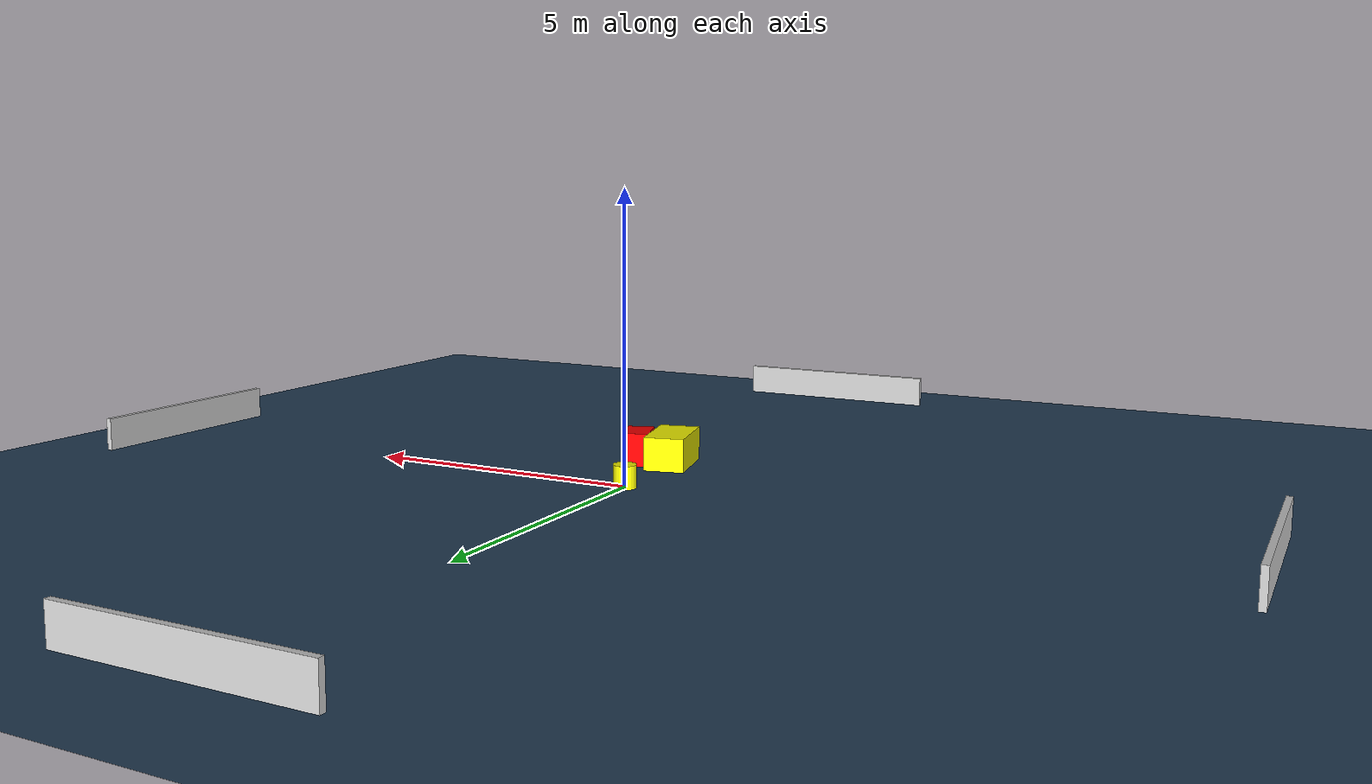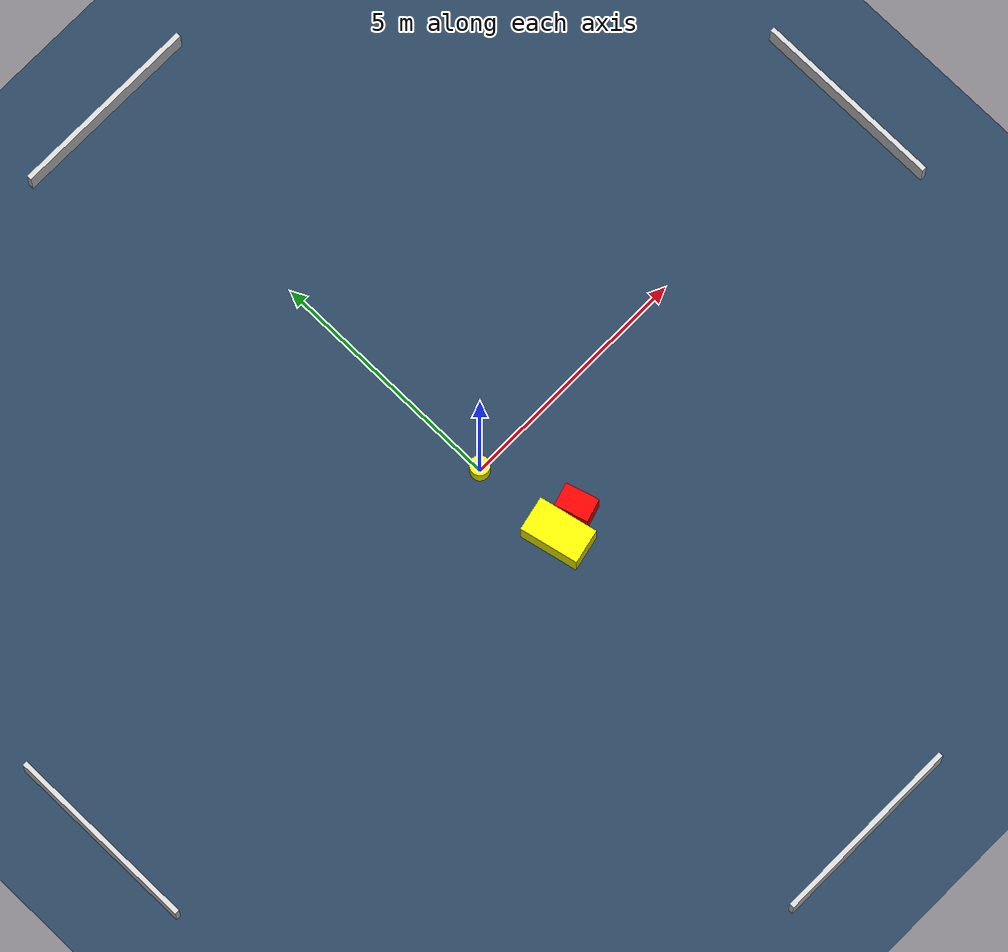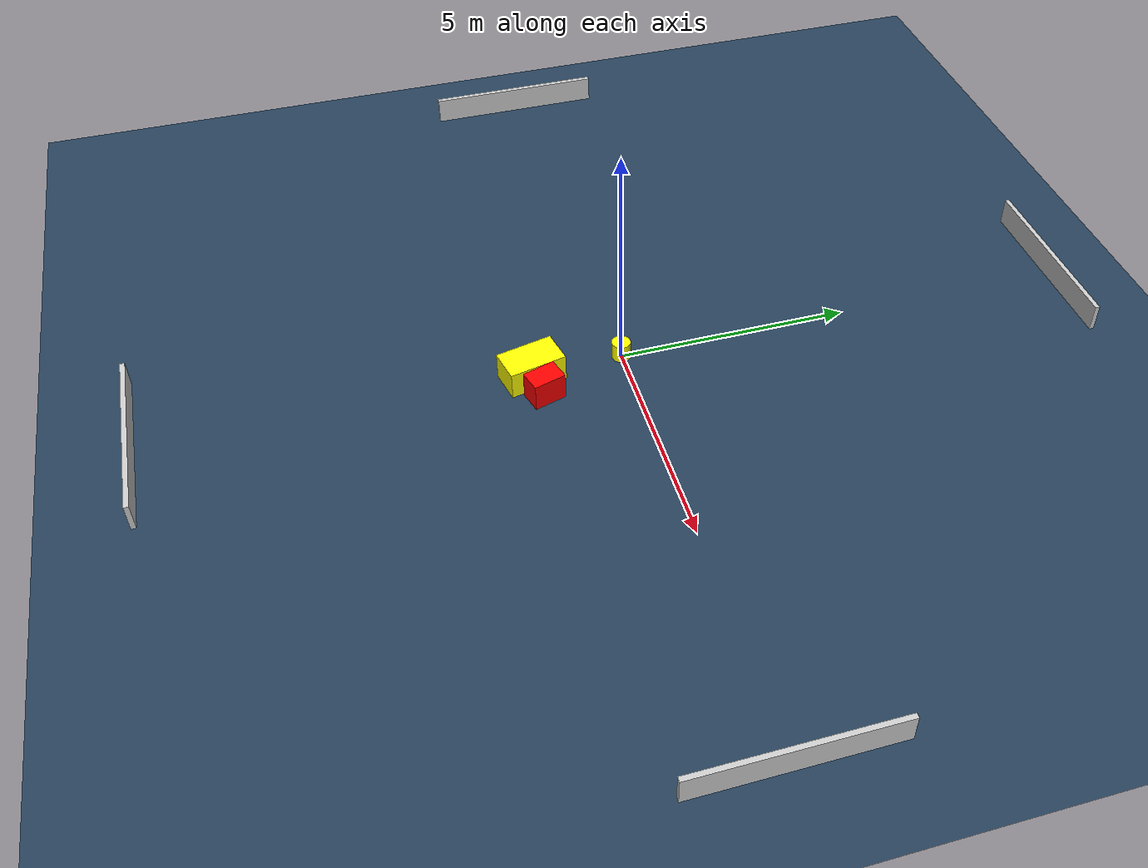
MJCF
<?xml version="1.0" ?>
<mujoco model="generated_environment">
  <option timestep="0.01" integrator="RK4" cone="elliptic"/>
  <default>
    <geom density="1"/>
  </default>
  <asset>
    <texture builtin="gradient" height="3072" name="skybox" rgb1="0.3 0.5 0.7" rgb2="0 0 0" type="skybox" width="512"/>
    <texture builtin="checker" height="300" name="groundplane" rgb1="0.2 0.3 0.4" rgb2="0.1 0.2 0.3" type="2d" width="300"/>
    <material name="groundplane" reflectance="0.2" texrepeat="5 5" texture="groundplane"/>
  </asset>
  <worldbody>
    <light dir="0 0 -1" directional="true" pos="0 0 1.5"/>
    <geom condim="3" friction="0.5 0.005 0.001" material="groundplane" name="floor" pos="0 0 0" size="0 0 0.05" type="plane"/>
    <body name="walls">
      <geom name="wall_1" condim="4" pos="-10.0 0.0 0.3" rgba="0.800000011920929 0.800000011920929 0.800000011920929 1.0" size="0.05 2.0 0.3" type="box"/>
      <geom name="wall_2" condim="4" pos="10.0 0.0 0.3" rgba="0.800000011920929 0.800000011920929 0.800000011920929 1.0" size="0.05 2.0 0.3" type="box"/>
      <geom name="wall_3" condim="4" pos="0.0 -10.0 0.3" rgba="0.800000011920929 0.800000011920929 0.800000011920929 1.0" size="2.0 0.05 0.3" type="box"/>
      <geom name="wall_4" condim="4" pos="0.0 10.0 0.3" rgba="0.800000011920929 0.800000011920929 0.800000011920929 1.0" size="2.0 0.05 0.3" type="box"/>
    </body>
    <body name="robot">
      <joint name="joint_x" type="slide" pos="0 0 0" axis="1 0 0"/>
      <joint name="joint_y" type="slide" pos="0 0 0" axis="0 1 0"/>
      <geom name="robot" type="cylinder" pos="0.0 0.0 0.2" size="0.2 0.2 0.0" mass="5.0" friction="1.0 0.005 0.0001" condim="4" rgba="1.0 1.0 0.0 1.0"/>
    </body>
    <body name="obstacle_1_movable">
      <geom name="obstacle_1_movable" condim="4" pos="0.10493678240129514 -1.9557205367602226 0.3" euler="0 0 282.59859794575203" friction="0.0 0.005 0.001" rgba="1.0 1.0 0.0 1.0" size="0.6158043775735393 0.36070969556752464 0.3" type="box" mass="0.1"/>
      <joint type="free"/>
    </body>
    <body name="obstacle_2_static">
      <geom name="obstacle_2_static" condim="4" pos="0.7239984475896091 -1.8275328162969002 0.3" euler="0 0 286.84141644718466" friction="0.0 0.005 0.001" rgba="1.0 0.0 0.0 1.0" size="0.3517073324303717 0.2422606981345169 0.3" type="box"/>
    </body>
  </worldbody>
  <actuator>
    <motor name="actuator_x" joint="joint_x" gear="1" ctrlrange="-1 1"/>
    <motor name="actuator_y" joint="joint_y" gear="1" ctrlrange="-1 1"/>
  </actuator>
</mujoco>
